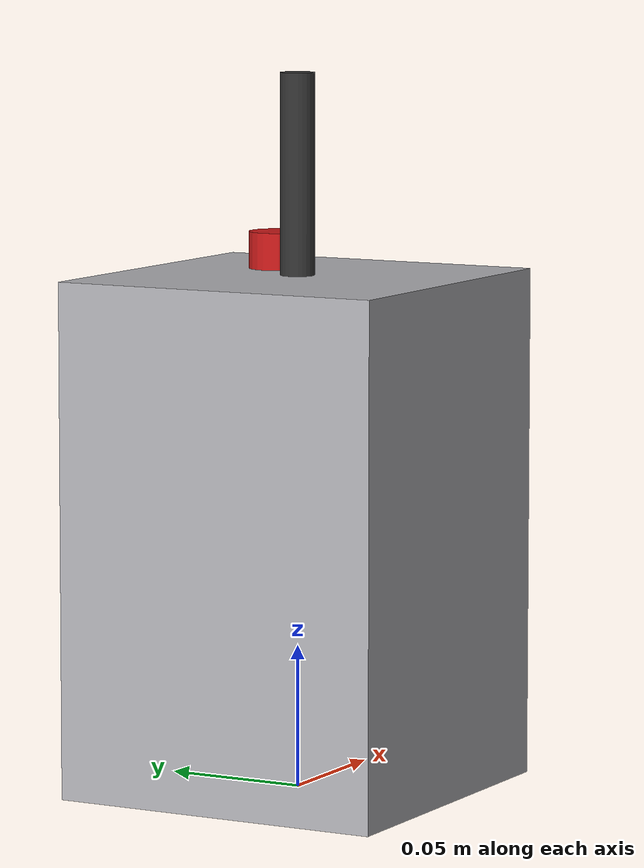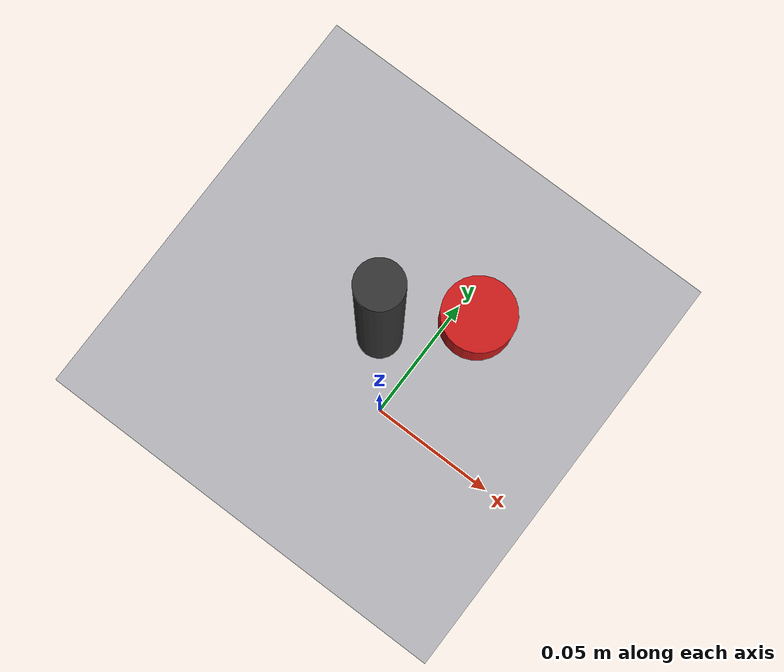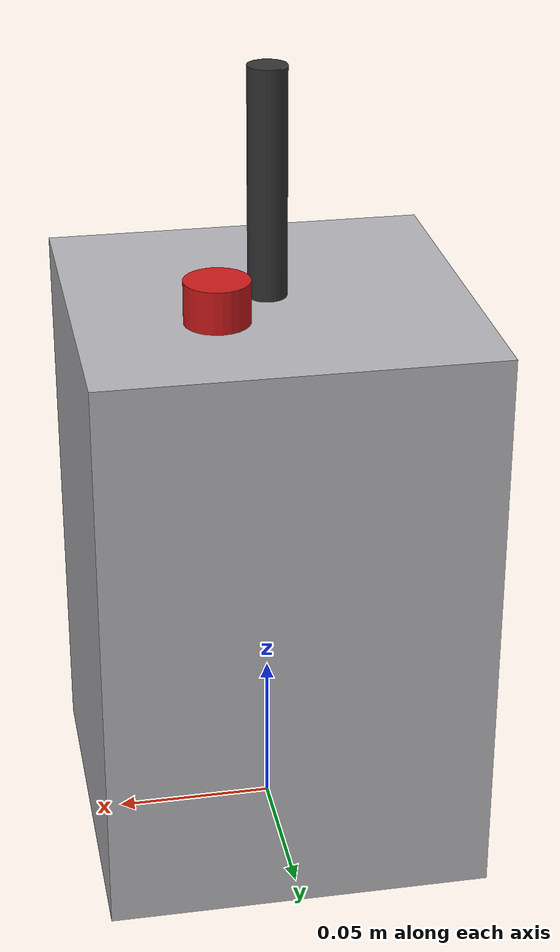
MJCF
<?xml version="1.0" encoding="utf-8"?>
<mujoco model="homogenizer">
  <compiler angle="radian" autolimits="true"/>
  <default>
    <default class="body"><geom contype="1" conaffinity="1"/></default>
  </default>
  <worldbody>
    <body name="base">
      <geom type="box" size="0.06 0.06 0.09" pos="0 0 0.09" rgba="0.7 0.7 0.72 1" class="body"/>
      <geom type="box" size="0.018 0.003 0.0225" pos="-0.03 -0.054 0.135" rgba="0.9 0.7 0.1 1" class="body"/>
      <geom type="cylinder" size="0.01 0.008" pos="0.018 0.018 0.185" rgba="0.8 0.1 0.1 1" class="body"/>
      <body name="probe_shaft" pos="0 0 0.18">
        <joint name="probe_shaft_joint" type="slide" axis="0 0 1" range="-0.06 0" damping="1.0" frictionloss="0.3"/>
  <geom type="cylinder" size="0.006 0.07" pos="0 0 0" rgba="0.2 0.2 0.2 1" class="body"/>
      </body>
    </body>
  </worldbody>
</mujoco>
